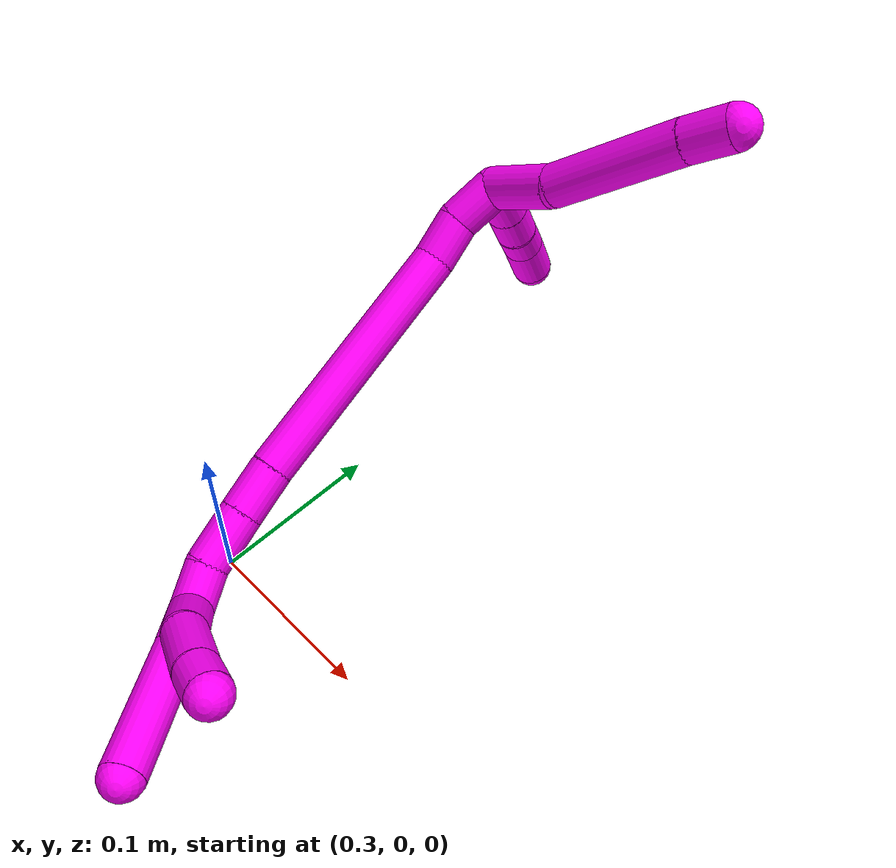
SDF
<sdf version="1.7">
 <world name="default">
  <model name="10">
   <static>0</static>
   <link name="10">
    <collision name="collision-cylinder-e_1_2_8">
     <pose>-0.0016 0.014853 -0.015766 -2.38599 -0.073712 0.185287</pose>
     <geometry><cylinder><radius>0.0125</radius><length>0.043438</length></cylinder></geometry>
     <surface>
      <friction><ode><mu>1.16</mu><mu2>1.16</mu2><slip1>0</slip1><slip2>0</slip2></ode></friction>
      <contact><ode><kp>1e+06</kp><kd>1</kd><max_vel>0</max_vel><min_depth>0.001</min_depth></ode></contact>
     </surface>
    </collision>
    <visual name="visual-cylinder-e_1_2_8">
     <pose>-0.0016 0.014853 -0.015766 -2.38599 -0.073712 0.185287</pose>
     <geometry><cylinder><radius>0.0125</radius><length>0.043438</length></cylinder></geometry>
     <material><ambient>1 0 0.964706 1</ambient></material>
    </visual>
    <collision name="collision-cylinder-e_2_8_9">
     <pose>0.003776 0.060818 -0.055845 -2.23415 0.174847 -0.355668</pose>
     <geometry><cylinder><radius>0.0125</radius><length>0.080194</length></cylinder></geometry>
     <surface>
      <friction><ode><mu>1.16</mu><mu2>1.16</mu2><slip1>0</slip1><slip2>0</slip2></ode></friction>
      <contact><ode><kp>1e+06</kp><kd>1</kd><max_vel>0</max_vel><min_depth>0.001</min_depth></ode></contact>
     </surface>
    </collision>
    <visual name="visual-cylinder-e_2_8_9">
     <pose>0.003776 0.060818 -0.055845 -2.23415 0.174847 -0.355668</pose>
     <geometry><cylinder><radius>0.0125</radius><length>0.080194</length></cylinder></geometry>
     <material><ambient>1 0 0.964706 1</ambient></material>
    </visual>
    <collision name="collision-cylinder-e_3_9_6">
     <pose>0.012252 0.10223 -0.08825 -2.2367 0.114073 -0.233865</pose>
     <geometry><cylinder><radius>0.0125</radius><length>0.026368</length></cylinder></geometry>
     <surface>
      <friction><ode><mu>1.16</mu><mu2>1.16</mu2><slip1>0</slip1><slip2>0</slip2></ode></friction>
      <contact><ode><kp>1e+06</kp><kd>1</kd><max_vel>0</max_vel><min_depth>0.001</min_depth></ode></contact>
     </surface>
    </collision>
    <visual name="visual-cylinder-e_3_9_6">
     <pose>0.012252 0.10223 -0.08825 -2.2367 0.114073 -0.233865</pose>
     <geometry><cylinder><radius>0.0125</radius><length>0.026368</length></cylinder></geometry>
     <material><ambient>1 0 0.964706 1</ambient></material>
    </visual>
    <collision name="collision-cylinder-e_1_2_10">
     <pose>-0.006962 0.003681 0.009935 -0.354855 -0.581397 0.107189</pose>
     <geometry><cylinder><radius>0.0125</radius><length>0.025355</length></cylinder></geometry>
     <surface>
      <friction><ode><mu>1.16</mu><mu2>1.16</mu2><slip1>0</slip1><slip2>0</slip2></ode></friction>
      <contact><ode><kp>1e+06</kp><kd>1</kd><max_vel>0</max_vel><min_depth>0.001</min_depth></ode></contact>
     </surface>
    </collision>
    <visual name="visual-cylinder-e_1_2_10">
     <pose>-0.006962 0.003681 0.009935 -0.354855 -0.581397 0.107189</pose>
     <geometry><cylinder><radius>0.0125</radius><length>0.025355</length></cylinder></geometry>
     <material><ambient>1 0 0.964706 1</ambient></material>
    </visual>
    <collision name="collision-cylinder-e_2_10_11">
     <pose>-0.020472 0.010327 0.028917 -0.31667 -0.60241 0.099125</pose>
     <geometry><cylinder><radius>0.0125</radius><length>0.02311</length></cylinder></geometry>
     <surface>
      <friction><ode><mu>1.16</mu><mu2>1.16</mu2><slip1>0</slip1><slip2>0</slip2></ode></friction>
      <contact><ode><kp>1e+06</kp><kd>1</kd><max_vel>0</max_vel><min_depth>0.001</min_depth></ode></contact>
     </surface>
    </collision>
    <visual name="visual-cylinder-e_2_10_11">
     <pose>-0.020472 0.010327 0.028917 -0.31667 -0.60241 0.099125</pose>
     <geometry><cylinder><radius>0.0125</radius><length>0.02311</length></cylinder></geometry>
     <material><ambient>1 0 0.964706 1</ambient></material>
    </visual>
    <collision name="collision-cylinder-e_3_11_12">
     <pose>-0.031829 0.015809 0.047168 -0.26689 -0.466846 0.063813</pose>
     <geometry><cylinder><radius>0.0125</radius><length>0.021371</length></cylinder></geometry>
     <surface>
      <friction><ode><mu>1.16</mu><mu2>1.16</mu2><slip1>0</slip1><slip2>0</slip2></ode></friction>
      <contact><ode><kp>1e+06</kp><kd>1</kd><max_vel>0</max_vel><min_depth>0.001</min_depth></ode></contact>
     </surface>
    </collision>
    <visual name="visual-cylinder-e_3_11_12">
     <pose>-0.031829 0.015809 0.047168 -0.26689 -0.466846 0.063813</pose>
     <geometry><cylinder><radius>0.0125</radius><length>0.021371</length></cylinder></geometry>
     <material><ambient>1 0 0.964706 1</ambient></material>
    </visual>
    <collision name="collision-cylinder-e_4_12_5">
     <pose>-0.045095 0.021849 0.068353 -0.28607 -0.595248 0.088294</pose>
     <geometry><cylinder><radius>0.0125</radius><length>0.030164</length></cylinder></geometry>
     <surface>
      <friction><ode><mu>1.16</mu><mu2>1.16</mu2><slip1>0</slip1><slip2>0</slip2></ode></friction>
      <contact><ode><kp>1e+06</kp><kd>1</kd><max_vel>0</max_vel><min_depth>0.001</min_depth></ode></contact>
     </surface>
    </collision>
    <visual name="visual-cylinder-e_4_12_5">
     <pose>-0.045095 0.021849 0.068353 -0.28607 -0.595248 0.088294</pose>
     <geometry><cylinder><radius>0.0125</radius><length>0.030164</length></cylinder></geometry>
     <material><ambient>1 0 0.964706 1</ambient></material>
    </visual>
    <collision name="collision-cylinder-e_1_2_13">
     <pose>-0.008047 -0.011547 0.001167 1.4701 -0.606272 -0.551146</pose>
     <geometry><cylinder><radius>0.0125</radius><length>0.028244</length></cylinder></geometry>
     <surface>
      <friction><ode><mu>1.16</mu><mu2>1.16</mu2><slip1>0</slip1><slip2>0</slip2></ode></friction>
      <contact><ode><kp>1e+06</kp><kd>1</kd><max_vel>0</max_vel><min_depth>0.001</min_depth></ode></contact>
     </surface>
    </collision>
    <visual name="visual-cylinder-e_1_2_13">
     <pose>-0.008047 -0.011547 0.001167 1.4701 -0.606272 -0.551146</pose>
     <geometry><cylinder><radius>0.0125</radius><length>0.028244</length></cylinder></geometry>
     <material><ambient>1 0 0.964706 1</ambient></material>
    </visual>
    <collision name="collision-cylinder-e_2_13_14">
     <pose>-0.026538 -0.031591 0.000892 1.73881 -0.88083 -1.01786</pose>
     <geometry><cylinder><radius>0.0125</radius><length>0.027084</length></cylinder></geometry>
     <surface>
      <friction><ode><mu>1.16</mu><mu2>1.16</mu2><slip1>0</slip1><slip2>0</slip2></ode></friction>
      <contact><ode><kp>1e+06</kp><kd>1</kd><max_vel>0</max_vel><min_depth>0.001</min_depth></ode></contact>
     </surface>
    </collision>
    <visual name="visual-cylinder-e_2_13_14">
     <pose>-0.026538 -0.031591 0.000892 1.73881 -0.88083 -1.01786</pose>
     <geometry><cylinder><radius>0.0125</radius><length>0.027084</length></cylinder></geometry>
     <material><ambient>1 0 0.964706 1</ambient></material>
    </visual>
    <collision name="collision-cylinder-e_3_14_15">
     <pose>-0.087476 -0.09274 -0.025967 2.02055 -0.712365 -1.07014</pose>
     <geometry><cylinder><radius>0.0125</radius><length>0.154503</length></cylinder></geometry>
     <surface>
      <friction><ode><mu>1.16</mu><mu2>1.16</mu2><slip1>0</slip1><slip2>0</slip2></ode></friction>
      <contact><ode><kp>1e+06</kp><kd>1</kd><max_vel>0</max_vel><min_depth>0.001</min_depth></ode></contact>
     </surface>
    </collision>
    <visual name="visual-cylinder-e_3_14_15">
     <pose>-0.087476 -0.09274 -0.025967 2.02055 -0.712365 -1.07014</pose>
     <geometry><cylinder><radius>0.0125</radius><length>0.154503</length></cylinder></geometry>
     <material><ambient>1 0 0.964706 1</ambient></material>
    </visual>
    <collision name="collision-cylinder-e_4_15_16">
     <pose>-0.148397 -0.154862 -0.056623 2.07603 -0.76677 -1.19985</pose>
     <geometry><cylinder><radius>0.0125</radius><length>0.030058</length></cylinder></geometry>
     <surface>
      <friction><ode><mu>1.16</mu><mu2>1.16</mu2><slip1>0</slip1><slip2>0</slip2></ode></friction>
      <contact><ode><kp>1e+06</kp><kd>1</kd><max_vel>0</max_vel><min_depth>0.001</min_depth></ode></contact>
     </surface>
    </collision>
    <visual name="visual-cylinder-e_4_15_16">
     <pose>-0.148397 -0.154862 -0.056623 2.07603 -0.76677 -1.19985</pose>
     <geometry><cylinder><radius>0.0125</radius><length>0.030058</length></cylinder></geometry>
     <material><ambient>1 0 0.964706 1</ambient></material>
    </visual>
    <collision name="collision-cylinder-e_5_16_17">
     <pose>-0.170649 -0.174763 -0.068114 2.1108 -0.771428 -1.24385</pose>
     <geometry><cylinder><radius>0.0125</radius><length>0.033924</length></cylinder></geometry>
     <surface>
      <friction><ode><mu>1.16</mu><mu2>1.16</mu2><slip1>0</slip1><slip2>0</slip2></ode></friction>
      <contact><ode><kp>1e+06</kp><kd>1</kd><max_vel>0</max_vel><min_depth>0.001</min_depth></ode></contact>
     </surface>
    </collision>
    <visual name="visual-cylinder-e_5_16_17">
     <pose>-0.170649 -0.174763 -0.068114 2.1108 -0.771428 -1.24385</pose>
     <geometry><cylinder><radius>0.0125</radius><length>0.033924</length></cylinder></geometry>
     <material><ambient>1 0 0.964706 1</ambient></material>
    </visual>
    <collision name="collision-cylinder-e_6_17_1">
     <pose>-0.193165 -0.190393 -0.079853 2.38304 -0.955314 -1.82924</pose>
     <geometry><cylinder><radius>0.0125</radius><length>0.026187</length></cylinder></geometry>
     <surface>
      <friction><ode><mu>1.16</mu><mu2>1.16</mu2><slip1>0</slip1><slip2>0</slip2></ode></friction>
      <contact><ode><kp>1e+06</kp><kd>1</kd><max_vel>0</max_vel><min_depth>0.001</min_depth></ode></contact>
     </surface>
    </collision>
    <visual name="visual-cylinder-e_6_17_1">
     <pose>-0.193165 -0.190393 -0.079853 2.38304 -0.955314 -1.82924</pose>
     <geometry><cylinder><radius>0.0125</radius><length>0.026187</length></cylinder></geometry>
     <material><ambient>1 0 0.964706 1</ambient></material>
    </visual>
    <collision name="collision-cylinder-e_1_1_18">
     <pose>-0.209695 -0.198175 -0.096021 2.90442 -0.488431 -2.2496</pose>
     <geometry><cylinder><radius>0.0125</radius><length>0.024886</length></cylinder></geometry>
     <surface>
      <friction><ode><mu>1.16</mu><mu2>1.16</mu2><slip1>0</slip1><slip2>0</slip2></ode></friction>
      <contact><ode><kp>1e+06</kp><kd>1</kd><max_vel>0</max_vel><min_depth>0.001</min_depth></ode></contact>
     </surface>
    </collision>
    <visual name="visual-cylinder-e_1_1_18">
     <pose>-0.209695 -0.198175 -0.096021 2.90442 -0.488431 -2.2496</pose>
     <geometry><cylinder><radius>0.0125</radius><length>0.024886</length></cylinder></geometry>
     <material><ambient>1 0 0.964706 1</ambient></material>
    </visual>
    <collision name="collision-cylinder-e_2_18_4">
     <pose>-0.233348 -0.210234 -0.138378 2.85088 -0.494185 -2.08993</pose>
     <geometry><cylinder><radius>0.0125</radius><length>0.075114</length></cylinder></geometry>
     <surface>
      <friction><ode><mu>1.16</mu><mu2>1.16</mu2><slip1>0</slip1><slip2>0</slip2></ode></friction>
      <contact><ode><kp>1e+06</kp><kd>1</kd><max_vel>0</max_vel><min_depth>0.001</min_depth></ode></contact>
     </surface>
    </collision>
    <visual name="visual-cylinder-e_2_18_4">
     <pose>-0.233348 -0.210234 -0.138378 2.85088 -0.494185 -2.08993</pose>
     <geometry><cylinder><radius>0.0125</radius><length>0.075114</length></cylinder></geometry>
     <material><ambient>1 0 0.964706 1</ambient></material>
    </visual>
    <collision name="collision-cylinder-e_1_1_19">
     <pose>-0.202371 -0.192994 -0.104718 -3.00825 0.075823 -1.03322</pose>
     <geometry><cylinder><radius>0.0125</radius><length>0.039215</length></cylinder></geometry>
     <surface>
      <friction><ode><mu>1.16</mu><mu2>1.16</mu2><slip1>0</slip1><slip2>0</slip2></ode></friction>
      <contact><ode><kp>1e+06</kp><kd>1</kd><max_vel>0</max_vel><min_depth>0.001</min_depth></ode></contact>
     </surface>
    </collision>
    <visual name="visual-cylinder-e_1_1_19">
     <pose>-0.202371 -0.192994 -0.104718 -3.00825 0.075823 -1.03322</pose>
     <geometry><cylinder><radius>0.0125</radius><length>0.039215</length></cylinder></geometry>
     <material><ambient>1 0 0.964706 1</ambient></material>
    </visual>
    <collision name="collision-cylinder-e_2_19_20">
     <pose>-0.20344 -0.183966 -0.142618 -2.80752 -0.129526 0.734391</pose>
     <geometry><cylinder><radius>0.0125</radius><length>0.039545</length></cylinder></geometry>
     <surface>
      <friction><ode><mu>1.16</mu><mu2>1.16</mu2><slip1>0</slip1><slip2>0</slip2></ode></friction>
      <contact><ode><kp>1e+06</kp><kd>1</kd><max_vel>0</max_vel><min_depth>0.001</min_depth></ode></contact>
     </surface>
    </collision>
    <visual name="visual-cylinder-e_2_19_20">
     <pose>-0.20344 -0.183966 -0.142618 -2.80752 -0.129526 0.734391</pose>
     <geometry><cylinder><radius>0.0125</radius><length>0.039545</length></cylinder></geometry>
     <material><ambient>1 0 0.964706 1</ambient></material>
    </visual>
    <collision name="collision-cylinder-e_3_20_3">
     <pose>-0.207905 -0.173159 -0.170626 -2.70919 -0.180976 0.783527</pose>
     <geometry><cylinder><radius>0.0125</radius><length>0.02124</length></cylinder></geometry>
     <surface>
      <friction><ode><mu>1.16</mu><mu2>1.16</mu2><slip1>0</slip1><slip2>0</slip2></ode></friction>
      <contact><ode><kp>1e+06</kp><kd>1</kd><max_vel>0</max_vel><min_depth>0.001</min_depth></ode></contact>
     </surface>
    </collision>
    <visual name="visual-cylinder-e_3_20_3">
     <pose>-0.207905 -0.173159 -0.170626 -2.70919 -0.180976 0.783527</pose>
     <geometry><cylinder><radius>0.0125</radius><length>0.02124</length></cylinder></geometry>
     <material><ambient>1 0 0.964706 1</ambient></material>
    </visual>
    <collision name="collision-sphere-3">
     <pose>-0.209817 -0.168782 -0.180111 0 -0 0</pose>
     <geometry><sphere><radius>0.0125</radius></sphere></geometry>
     <surface>
      <friction><ode><mu>1.16</mu><mu2>1.16</mu2><slip1>0</slip1><slip2>0</slip2></ode></friction>
      <contact><ode><kp>1e+06</kp><kd>1</kd><max_vel>0</max_vel><min_depth>0.001</min_depth></ode></contact>
     </surface>
    </collision>
    <visual name="visual-sphere-3">
     <pose>-0.209817 -0.168782 -0.180111 0 -0 0</pose>
     <geometry><sphere><radius>0.0125</radius></sphere></geometry>
     <material><ambient>1 0 0.964706 1</ambient></material>
    </visual>
    <collision name="collision-sphere-20">
     <pose>-0.205994 -0.177537 -0.161141 0 -0 0</pose>
     <geometry><sphere><radius>0.0125</radius></sphere></geometry>
     <surface>
      <friction><ode><mu>1.16</mu><mu2>1.16</mu2><slip1>0</slip1><slip2>0</slip2></ode></friction>
      <contact><ode><kp>1e+06</kp><kd>1</kd><max_vel>0</max_vel><min_depth>0.001</min_depth></ode></contact>
     </surface>
    </collision>
    <visual name="visual-sphere-20">
     <pose>-0.205994 -0.177537 -0.161141 0 -0 0</pose>
     <geometry><sphere><radius>0.0125</radius></sphere></geometry>
     <material><ambient>1 0 0.964706 1</ambient></material>
    </visual>
    <collision name="collision-sphere-19">
     <pose>-0.200886 -0.190395 -0.124095 0 -0 0</pose>
     <geometry><sphere><radius>0.0125</radius></sphere></geometry>
     <surface>
      <friction><ode><mu>1.16</mu><mu2>1.16</mu2><slip1>0</slip1><slip2>0</slip2></ode></friction>
      <contact><ode><kp>1e+06</kp><kd>1</kd><max_vel>0</max_vel><min_depth>0.001</min_depth></ode></contact>
     </surface>
    </collision>
    <visual name="visual-sphere-19">
     <pose>-0.200886 -0.190395 -0.124095 0 -0 0</pose>
     <geometry><sphere><radius>0.0125</radius></sphere></geometry>
     <material><ambient>1 0 0.964706 1</ambient></material>
    </visual>
    <collision name="collision-sphere-11">
     <pose>-0.02702 0.013292 0.037964 0 -0 0</pose>
     <geometry><sphere><radius>0.0125</radius></sphere></geometry>
     <surface>
      <friction><ode><mu>1.16</mu><mu2>1.16</mu2><slip1>0</slip1><slip2>0</slip2></ode></friction>
      <contact><ode><kp>1e+06</kp><kd>1</kd><max_vel>0</max_vel><min_depth>0.001</min_depth></ode></contact>
     </surface>
    </collision>
    <visual name="visual-sphere-11">
     <pose>-0.02702 0.013292 0.037964 0 -0 0</pose>
     <geometry><sphere><radius>0.0125</radius></sphere></geometry>
     <material><ambient>1 0 0.964706 1</ambient></material>
    </visual>
    <collision name="collision-sphere-10">
     <pose>-0.013925 0.007362 0.019869 0 -0 0</pose>
     <geometry><sphere><radius>0.0125</radius></sphere></geometry>
     <surface>
      <friction><ode><mu>1.16</mu><mu2>1.16</mu2><slip1>0</slip1><slip2>0</slip2></ode></friction>
      <contact><ode><kp>1e+06</kp><kd>1</kd><max_vel>0</max_vel><min_depth>0.001</min_depth></ode></contact>
     </surface>
    </collision>
    <visual name="visual-sphere-10">
     <pose>-0.013925 0.007362 0.019869 0 -0 0</pose>
     <geometry><sphere><radius>0.0125</radius></sphere></geometry>
     <material><ambient>1 0 0.964706 1</ambient></material>
    </visual>
    <collision name="collision-sphere-6">
     <pose>0.013753 0.11253 -0.096342 0 -0 0</pose>
     <geometry><sphere><radius>0.0125</radius></sphere></geometry>
     <surface>
      <friction><ode><mu>1.16</mu><mu2>1.16</mu2><slip1>0</slip1><slip2>0</slip2></ode></friction>
      <contact><ode><kp>1e+06</kp><kd>1</kd><max_vel>0</max_vel><min_depth>0.001</min_depth></ode></contact>
     </surface>
    </collision>
    <visual name="visual-sphere-6">
     <pose>0.013753 0.11253 -0.096342 0 -0 0</pose>
     <geometry><sphere><radius>0.0125</radius></sphere></geometry>
     <material><ambient>1 0 0.964706 1</ambient></material>
    </visual>
    <collision name="collision-sphere-9">
     <pose>0.010751 0.09193 -0.080159 0 -0 0</pose>
     <geometry><sphere><radius>0.0125</radius></sphere></geometry>
     <surface>
      <friction><ode><mu>1.16</mu><mu2>1.16</mu2><slip1>0</slip1><slip2>0</slip2></ode></friction>
      <contact><ode><kp>1e+06</kp><kd>1</kd><max_vel>0</max_vel><min_depth>0.001</min_depth></ode></contact>
     </surface>
    </collision>
    <visual name="visual-sphere-9">
     <pose>0.010751 0.09193 -0.080159 0 -0 0</pose>
     <geometry><sphere><radius>0.0125</radius></sphere></geometry>
     <material><ambient>1 0 0.964706 1</ambient></material>
    </visual>
    <collision name="collision-sphere-2">
     <geometry><sphere><radius>0.0125</radius></sphere></geometry>
     <surface>
      <friction><ode><mu>1.16</mu><mu2>1.16</mu2><slip1>0</slip1><slip2>0</slip2></ode></friction>
      <contact><ode><kp>1e+06</kp><kd>1</kd><max_vel>0</max_vel><min_depth>0.001</min_depth></ode></contact>
     </surface>
    </collision>
    <visual name="visual-sphere-2">
     <geometry><sphere><radius>0.0125</radius></sphere></geometry>
     <material><ambient>1 0 0.964706 1</ambient></material>
    </visual>
    <collision name="collision-sphere-8">
     <pose>-0.003199 0.029706 -0.031531 0 -0 0</pose>
     <geometry><sphere><radius>0.0125</radius></sphere></geometry>
     <surface>
      <friction><ode><mu>1.16</mu><mu2>1.16</mu2><slip1>0</slip1><slip2>0</slip2></ode></friction>
      <contact><ode><kp>1e+06</kp><kd>1</kd><max_vel>0</max_vel><min_depth>0.001</min_depth></ode></contact>
     </surface>
    </collision>
    <visual name="visual-sphere-8">
     <pose>-0.003199 0.029706 -0.031531 0 -0 0</pose>
     <geometry><sphere><radius>0.0125</radius></sphere></geometry>
     <material><ambient>1 0 0.964706 1</ambient></material>
    </visual>
    <collision name="collision-sphere-12">
     <pose>-0.036638 0.018325 0.056373 0 -0 0</pose>
     <geometry><sphere><radius>0.0125</radius></sphere></geometry>
     <surface>
      <friction><ode><mu>1.16</mu><mu2>1.16</mu2><slip1>0</slip1><slip2>0</slip2></ode></friction>
      <contact><ode><kp>1e+06</kp><kd>1</kd><max_vel>0</max_vel><min_depth>0.001</min_depth></ode></contact>
     </surface>
    </collision>
    <visual name="visual-sphere-12">
     <pose>-0.036638 0.018325 0.056373 0 -0 0</pose>
     <geometry><sphere><radius>0.0125</radius></sphere></geometry>
     <material><ambient>1 0 0.964706 1</ambient></material>
    </visual>
    <collision name="collision-sphere-5">
     <pose>-0.053551 0.025373 0.080334 0 -0 0</pose>
     <geometry><sphere><radius>0.0125</radius></sphere></geometry>
     <surface>
      <friction><ode><mu>1.16</mu><mu2>1.16</mu2><slip1>0</slip1><slip2>0</slip2></ode></friction>
      <contact><ode><kp>1e+06</kp><kd>1</kd><max_vel>0</max_vel><min_depth>0.001</min_depth></ode></contact>
     </surface>
    </collision>
    <visual name="visual-sphere-5">
     <pose>-0.053551 0.025373 0.080334 0 -0 0</pose>
     <geometry><sphere><radius>0.0125</radius></sphere></geometry>
     <material><ambient>1 0 0.964706 1</ambient></material>
    </visual>
    <collision name="collision-sphere-13">
     <pose>-0.016094 -0.023093 0.002333 0 -0 0</pose>
     <geometry><sphere><radius>0.0125</radius></sphere></geometry>
     <surface>
      <friction><ode><mu>1.16</mu><mu2>1.16</mu2><slip1>0</slip1><slip2>0</slip2></ode></friction>
      <contact><ode><kp>1e+06</kp><kd>1</kd><max_vel>0</max_vel><min_depth>0.001</min_depth></ode></contact>
     </surface>
    </collision>
    <visual name="visual-sphere-13">
     <pose>-0.016094 -0.023093 0.002333 0 -0 0</pose>
     <geometry><sphere><radius>0.0125</radius></sphere></geometry>
     <material><ambient>1 0 0.964706 1</ambient></material>
    </visual>
    <collision name="collision-sphere-14">
     <pose>-0.036983 -0.040089 -0.00055 0 -0 0</pose>
     <geometry><sphere><radius>0.0125</radius></sphere></geometry>
     <surface>
      <friction><ode><mu>1.16</mu><mu2>1.16</mu2><slip1>0</slip1><slip2>0</slip2></ode></friction>
      <contact><ode><kp>1e+06</kp><kd>1</kd><max_vel>0</max_vel><min_depth>0.001</min_depth></ode></contact>
     </surface>
    </collision>
    <visual name="visual-sphere-14">
     <pose>-0.036983 -0.040089 -0.00055 0 -0 0</pose>
     <geometry><sphere><radius>0.0125</radius></sphere></geometry>
     <material><ambient>1 0 0.964706 1</ambient></material>
    </visual>
    <collision name="collision-sphere-15">
     <pose>-0.137969 -0.145391 -0.051385 0 -0 0</pose>
     <geometry><sphere><radius>0.0125</radius></sphere></geometry>
     <surface>
      <friction><ode><mu>1.16</mu><mu2>1.16</mu2><slip1>0</slip1><slip2>0</slip2></ode></friction>
      <contact><ode><kp>1e+06</kp><kd>1</kd><max_vel>0</max_vel><min_depth>0.001</min_depth></ode></contact>
     </surface>
    </collision>
    <visual name="visual-sphere-15">
     <pose>-0.137969 -0.145391 -0.051385 0 -0 0</pose>
     <geometry><sphere><radius>0.0125</radius></sphere></geometry>
     <material><ambient>1 0 0.964706 1</ambient></material>
    </visual>
    <collision name="collision-sphere-16">
     <pose>-0.158824 -0.164333 -0.061862 0 -0 0</pose>
     <geometry><sphere><radius>0.0125</radius></sphere></geometry>
     <surface>
      <friction><ode><mu>1.16</mu><mu2>1.16</mu2><slip1>0</slip1><slip2>0</slip2></ode></friction>
      <contact><ode><kp>1e+06</kp><kd>1</kd><max_vel>0</max_vel><min_depth>0.001</min_depth></ode></contact>
     </surface>
    </collision>
    <visual name="visual-sphere-16">
     <pose>-0.158824 -0.164333 -0.061862 0 -0 0</pose>
     <geometry><sphere><radius>0.0125</radius></sphere></geometry>
     <material><ambient>1 0 0.964706 1</ambient></material>
    </visual>
    <collision name="collision-sphere-17">
     <pose>-0.182475 -0.185193 -0.074366 0 -0 0</pose>
     <geometry><sphere><radius>0.0125</radius></sphere></geometry>
     <surface>
      <friction><ode><mu>1.16</mu><mu2>1.16</mu2><slip1>0</slip1><slip2>0</slip2></ode></friction>
      <contact><ode><kp>1e+06</kp><kd>1</kd><max_vel>0</max_vel><min_depth>0.001</min_depth></ode></contact>
     </surface>
    </collision>
    <visual name="visual-sphere-17">
     <pose>-0.182475 -0.185193 -0.074366 0 -0 0</pose>
     <geometry><sphere><radius>0.0125</radius></sphere></geometry>
     <material><ambient>1 0 0.964706 1</ambient></material>
    </visual>
    <collision name="collision-sphere-1">
     <pose>-0.203856 -0.195593 -0.08534 0 -0 0</pose>
     <geometry><sphere><radius>0.0125</radius></sphere></geometry>
     <surface>
      <friction><ode><mu>1.16</mu><mu2>1.16</mu2><slip1>0</slip1><slip2>0</slip2></ode></friction>
      <contact><ode><kp>1e+06</kp><kd>1</kd><max_vel>0</max_vel><min_depth>0.001</min_depth></ode></contact>
     </surface>
    </collision>
    <visual name="visual-sphere-1">
     <pose>-0.203856 -0.195593 -0.08534 0 -0 0</pose>
     <geometry><sphere><radius>0.0125</radius></sphere></geometry>
     <material><ambient>1 0 0.964706 1</ambient></material>
    </visual>
    <collision name="collision-sphere-18">
     <pose>-0.215534 -0.200757 -0.106701 0 -0 0</pose>
     <geometry><sphere><radius>0.0125</radius></sphere></geometry>
     <surface>
      <friction><ode><mu>1.16</mu><mu2>1.16</mu2><slip1>0</slip1><slip2>0</slip2></ode></friction>
      <contact><ode><kp>1e+06</kp><kd>1</kd><max_vel>0</max_vel><min_depth>0.001</min_depth></ode></contact>
     </surface>
    </collision>
    <visual name="visual-sphere-18">
     <pose>-0.215534 -0.200757 -0.106701 0 -0 0</pose>
     <geometry><sphere><radius>0.0125</radius></sphere></geometry>
     <material><ambient>1 0 0.964706 1</ambient></material>
    </visual>
    <collision name="collision-sphere-4">
     <pose>-0.251161 -0.219711 -0.170054 0 -0 0</pose>
     <geometry><sphere><radius>0.0125</radius></sphere></geometry>
     <surface>
      <friction><ode><mu>1.16</mu><mu2>1.16</mu2><slip1>0</slip1><slip2>0</slip2></ode></friction>
      <contact><ode><kp>1e+06</kp><kd>1</kd><max_vel>0</max_vel><min_depth>0.001</min_depth></ode></contact>
     </surface>
    </collision>
    <visual name="visual-sphere-4">
     <pose>-0.251161 -0.219711 -0.170054 0 -0 0</pose>
     <geometry><sphere><radius>0.0125</radius></sphere></geometry>
     <material><ambient>1 0 0.964706 1</ambient></material>
    </visual>
    <inertial>
     <pose>-0.100062 -0.081036 -0.052951 0 -0 0</pose>
     <mass>0.75</mass>
     <inertia>
      <ixx>-0.000115</ixx>
      <ixy>0</ixy>
      <ixz>0</ixz>
      <iyy>-0.00017</iyy>
      <iyz>0</iyz>
      <izz>0.000396</izz>
     </inertia>
    </inertial>
   </link>
   <pose>0.281062 0.230615 0.129912 2.99182 -0.854992 2.56325</pose>
  </model>
 </world>
</sdf>
